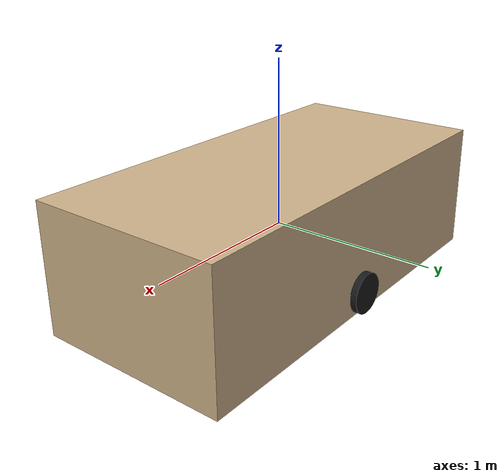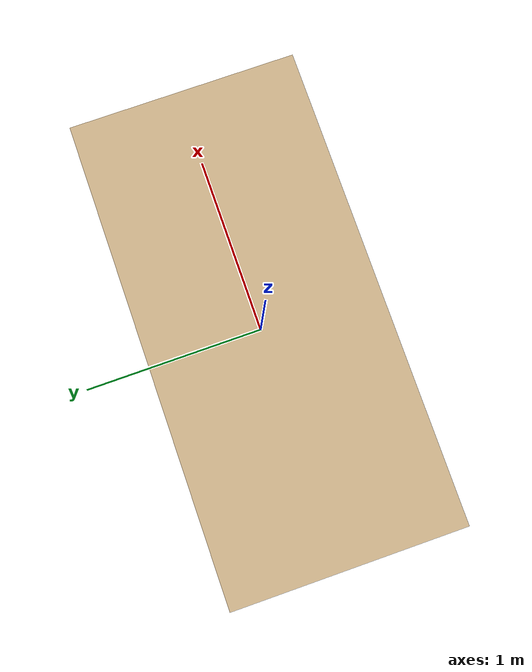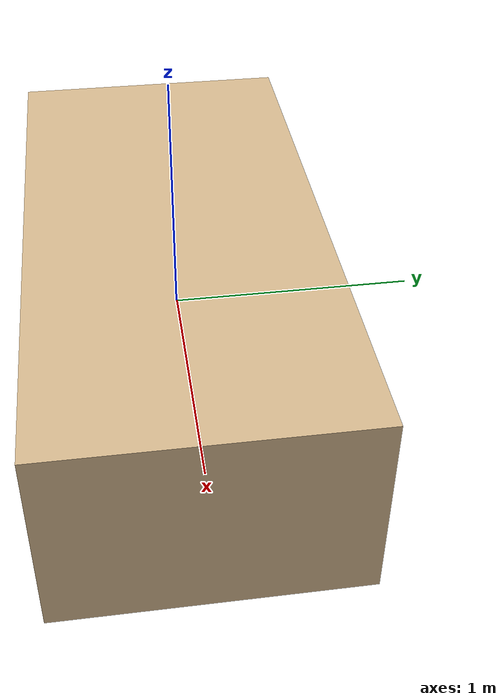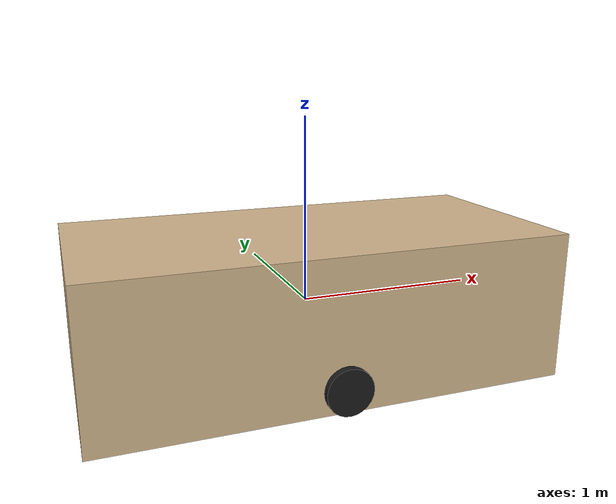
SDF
<?xml version="1.0"?>
<sdf version="1.9">
  <model name="apc">
    <static>false</static>

    <!-- Body: box 2.5 x 1.2 x 0.8 m, mass 15000 kg -->
    <link name="base_link">
      <inertial>
        <mass>15000</mass>
        <inertia>
          <ixx>2600.00</ixx><ixy>0</ixy><ixz>0</ixz>
          <iyy>8612.50</iyy><iyz>0</iyz>
          <izz>9612.50</izz>
        </inertia>
      </inertial>
      <collision name="body_collision">
        <geometry>
          <box><size>2.5 1.2 0.8</size></box>
        </geometry>
      </collision>
      <visual name="body_visual">
        <geometry>
          <box><size>2.5 1.2 0.8</size></box>
        </geometry>
        <material>
          <ambient>0.82 0.71 0.55 1</ambient>
          <diffuse>0.82 0.71 0.55 1</diffuse>
        </material>
      </visual>

      <!-- 2D Lidar sensor (360 deg, 200 m range, 10 Hz) -->
      <sensor name="lidar" type="gpu_lidar">
        <pose>0 0 0.45 0 0 0</pose>
        <topic>scan</topic>
        <update_rate>10</update_rate>
        <lidar>
          <scan>
            <horizontal>
              <samples>360</samples>
              <resolution>1</resolution>
              <min_angle>0</min_angle>
              <max_angle>6.283185</max_angle>
            </horizontal>
          </scan>
          <range>
            <min>0.3</min>
            <max>200.0</max>
          </range>
        </lidar>
        <always_on>true</always_on>
        <visualize>true</visualize>
      </sensor>

      <!-- IMU sensor (50 Hz) -->
      <sensor name="imu" type="imu">
        <update_rate>50</update_rate>
        <always_on>true</always_on>
      </sensor>

      <!-- Contact sensor -->
      <sensor name="contact" type="contact">
        <contact>
          <collision>body_collision</collision>
        </contact>
        <update_rate>10</update_rate>
        <always_on>true</always_on>
      </sensor>
    </link>

    <!-- Left wheel -->
    <link name="left_wheel">
      <pose>0 0.6 -0.275 -1.5708 0 0</pose>
      <inertial>
        <mass>50</mass>
        <inertia>
          <ixx>0.2604</ixx><ixy>0</ixy><ixz>0</ixz>
          <iyy>0.2604</iyy><iyz>0</iyz>
          <izz>0.3906</izz>
        </inertia>
      </inertial>
      <collision name="left_wheel_collision">
        <geometry>
          <cylinder><radius>0.125</radius><length>0.08</length></cylinder>
        </geometry>
      </collision>
      <visual name="left_wheel_visual">
        <geometry>
          <cylinder><radius>0.125</radius><length>0.08</length></cylinder>
        </geometry>
        <material>
          <ambient>0.1 0.1 0.1 1</ambient>
          <diffuse>0.1 0.1 0.1 1</diffuse>
        </material>
      </visual>
    </link>

    <!-- Right wheel -->
    <link name="right_wheel">
      <pose>0 -0.6 -0.275 -1.5708 0 0</pose>
      <inertial>
        <mass>50</mass>
        <inertia>
          <ixx>0.2604</ixx><ixy>0</ixy><ixz>0</ixz>
          <iyy>0.2604</iyy><iyz>0</iyz>
          <izz>0.3906</izz>
        </inertia>
      </inertial>
      <collision name="right_wheel_collision">
        <geometry>
          <cylinder><radius>0.125</radius><length>0.08</length></cylinder>
        </geometry>
      </collision>
      <visual name="right_wheel_visual">
        <geometry>
          <cylinder><radius>0.125</radius><length>0.08</length></cylinder>
        </geometry>
        <material>
          <ambient>0.1 0.1 0.1 1</ambient>
          <diffuse>0.1 0.1 0.1 1</diffuse>
        </material>
      </visual>
    </link>

    <!-- Caster (frictionless sphere) -->
    <link name="caster">
      <pose>-1.0 0 -0.36 0 0 0</pose>
      <inertial>
        <mass>25</mass>
        <inertia>
          <ixx>0.01</ixx><ixy>0</ixy><ixz>0</ixz>
          <iyy>0.01</iyy><iyz>0</iyz>
          <izz>0.01</izz>
        </inertia>
      </inertial>
      <collision name="caster_collision">
        <geometry>
          <sphere><radius>0.04</radius></sphere>
        </geometry>
        <surface>
          <friction>
            <ode><mu>0</mu><mu2>0</mu2></ode>
          </friction>
        </surface>
      </collision>
    </link>

    <!-- Joints -->
    <joint name="left_wheel_joint" type="revolute">
      <parent>base_link</parent>
      <child>left_wheel</child>
      <axis><xyz>0 0 1</xyz></axis>
    </joint>
    <joint name="right_wheel_joint" type="revolute">
      <parent>base_link</parent>
      <child>right_wheel</child>
      <axis><xyz>0 0 1</xyz></axis>
    </joint>
    <joint name="caster_joint" type="ball">
      <parent>base_link</parent>
      <child>caster</child>
    </joint>

    <!-- Differential drive plugin -->
    <plugin filename="gz-sim-diff-drive-system" name="gz::sim::systems::DiffDrive">
      <left_joint>left_wheel_joint</left_joint>
      <right_joint>right_wheel_joint</right_joint>
      <wheel_separation>1.2</wheel_separation>
      <wheel_radius>0.125</wheel_radius>
      <max_linear_acceleration>5.0</max_linear_acceleration>
      <max_linear_velocity>25.0</max_linear_velocity>
      <max_angular_velocity>0.8</max_angular_velocity>
      <topic>cmd_vel</topic>
      <odom_topic>odom</odom_topic>
    </plugin>

    <!-- Pose publisher -->
    <plugin filename="gz-sim-pose-publisher-system" name="gz::sim::systems::PosePublisher">
      <publish_link_pose>false</publish_link_pose>
      <publish_model_pose>true</publish_model_pose>
      <update_frequency>50</update_frequency>
    </plugin>
  </model>
</sdf>
